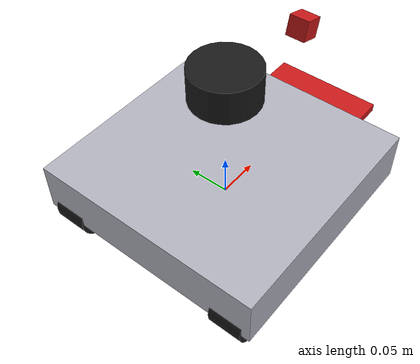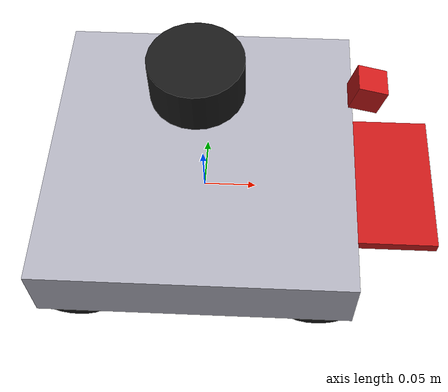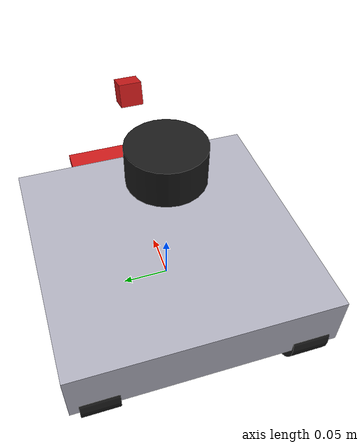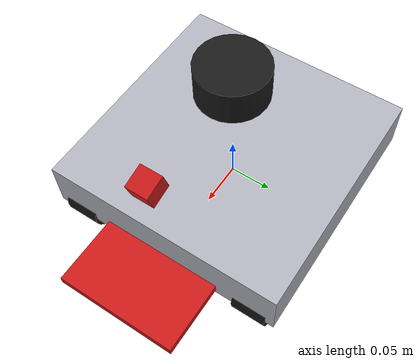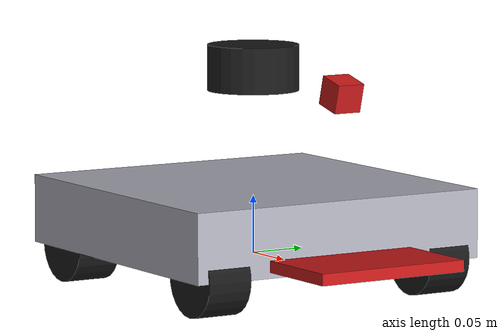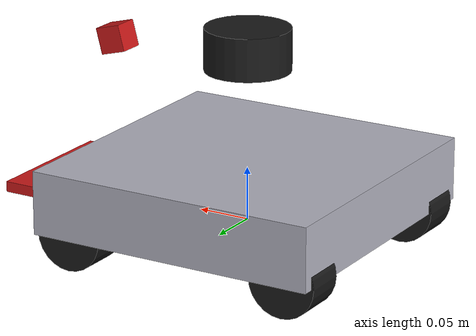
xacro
<?xml version="1.0"?>
<robot name="dase7503_robot" xmlns:xacro="http://www.ros.org/wiki/xacro">
  <!--
    Mecanum 4 轮全向底盘 + 升降叉 URDF.
    尺寸按实际设计目标: 280×280×170mm (留 10mm 安全边).
    TF 树: map -> odom -> base_footprint -> base_link -> {laser_link, camera_link, wheel_*_link, lifter_link}
  -->

  <xacro:property name="base_w" value="0.280"/>
  <xacro:property name="base_l" value="0.280"/>
  <xacro:property name="base_h" value="0.060"/>
  <xacro:property name="wheel_r" value="0.0325"/>
  <xacro:property name="wheel_w" value="0.040"/>
  <xacro:property name="wheel_base_x" value="0.110"/>
  <xacro:property name="wheel_base_y" value="0.110"/>
  <xacro:property name="laser_h" value="0.130"/>
  <xacro:property name="camera_h" value="0.120"/>

  <material name="aluminum"><color rgba="0.7 0.7 0.75 1"/></material>
  <material name="black"><color rgba="0.1 0.1 0.1 1"/></material>
  <material name="red"><color rgba="0.8 0.1 0.1 1"/></material>

  <!-- base -->
  <link name="base_footprint"/>

  <joint name="base_footprint_to_base" type="fixed">
    <parent link="base_footprint"/>
    <child link="base_link"/>
    <origin xyz="0 0 ${wheel_r}" rpy="0 0 0"/>
  </joint>

  <link name="base_link">
    <visual>
      <geometry><box size="${base_l} ${base_w} ${base_h}"/></geometry>
      <material name="aluminum"/>
    </visual>
    <collision>
      <geometry><box size="${base_l} ${base_w} ${base_h}"/></geometry>
    </collision>
    <inertial>
      <mass value="1.5"/>
      <inertia ixx="0.02" ixy="0" ixz="0" iyy="0.02" iyz="0" izz="0.03"/>
    </inertial>
  </link>

  <!-- 4 wheels -->
  <xacro:macro name="wheel" params="name x y">
    <link name="${name}_link">
      <visual>
        <origin xyz="0 0 0" rpy="1.5708 0 0"/>
        <geometry><cylinder length="${wheel_w}" radius="${wheel_r}"/></geometry>
        <material name="black"/>
      </visual>
      <collision>
        <origin xyz="0 0 0" rpy="1.5708 0 0"/>
        <geometry><cylinder length="${wheel_w}" radius="${wheel_r}"/></geometry>
      </collision>
      <inertial>
        <mass value="0.1"/>
        <inertia ixx="0.0001" ixy="0" ixz="0" iyy="0.0001" iyz="0" izz="0.0001"/>
      </inertial>
    </link>
    <joint name="${name}_joint" type="continuous">
      <parent link="base_link"/>
      <child link="${name}_link"/>
      <origin xyz="${x} ${y} ${-base_h/2}" rpy="0 0 0"/>
      <axis xyz="0 1 0"/>
    </joint>
  </xacro:macro>
  <xacro:wheel name="wheel_fl" x="${wheel_base_x}"  y="${wheel_base_y}"/>
  <xacro:wheel name="wheel_fr" x="${wheel_base_x}"  y="${-wheel_base_y}"/>
  <xacro:wheel name="wheel_rl" x="${-wheel_base_x}" y="${wheel_base_y}"/>
  <xacro:wheel name="wheel_rr" x="${-wheel_base_x}" y="${-wheel_base_y}"/>

  <!-- MS200 LiDAR -->
  <link name="laser_link">
    <visual>
      <geometry><cylinder length="0.04" radius="0.04"/></geometry>
      <material name="black"/>
    </visual>
  </link>
  <joint name="laser_joint" type="fixed">
    <parent link="base_link"/>
    <child link="laser_link"/>
    <origin xyz="0 0 ${laser_h}" rpy="0 0 0"/>
  </joint>

  <!-- Pi Camera 3 (IMX708) -->
  <link name="camera_link">
    <visual>
      <geometry><box size="0.025 0.025 0.025"/></geometry>
      <material name="red"/>
    </visual>
  </link>
  <joint name="camera_joint" type="fixed">
    <parent link="base_link"/>
    <child link="camera_link"/>
    <!-- 机器人前方, 微下倾 15° -->
    <origin xyz="${base_l/2} 0 ${camera_h}" rpy="0 0.2618 0"/>
  </joint>

  <!-- Lifter fork (升降叉) -->
  <link name="lifter_link">
    <visual>
      <geometry><box size="0.08 0.14 0.01"/></geometry>
      <material name="red"/>
    </visual>
  </link>
  <joint name="lifter_joint" type="prismatic">
    <parent link="base_link"/>
    <child link="lifter_link"/>
    <origin xyz="${base_l/2 + 0.04} 0 -${base_h/2 - 0.01}" rpy="0 0 0"/>
    <axis xyz="0 0 1"/>
    <limit effort="50" velocity="0.1" lower="0" upper="0.03"/>
  </joint>
</robot>
